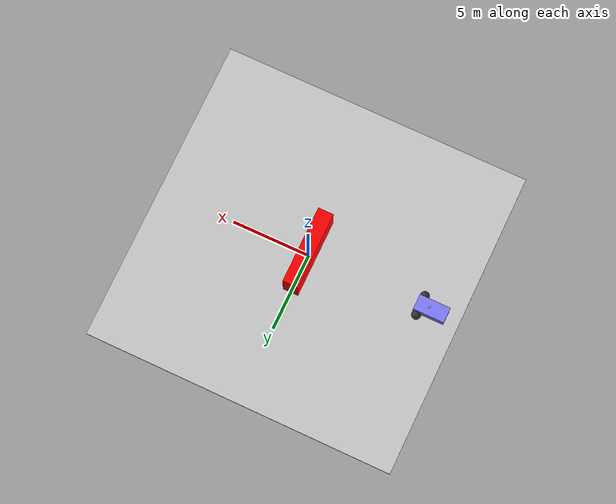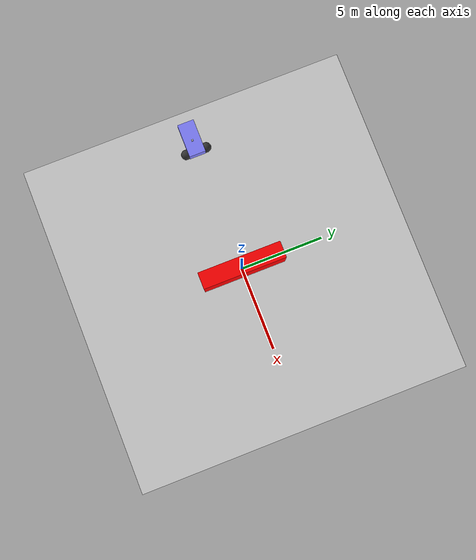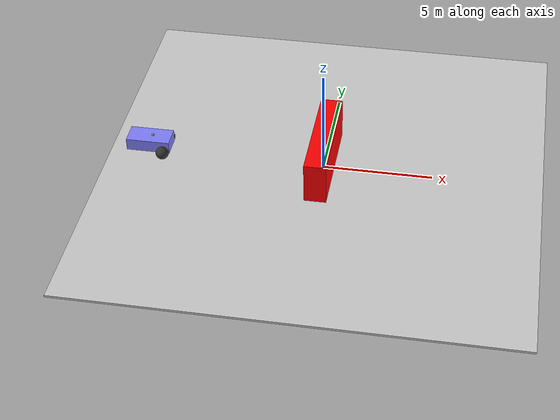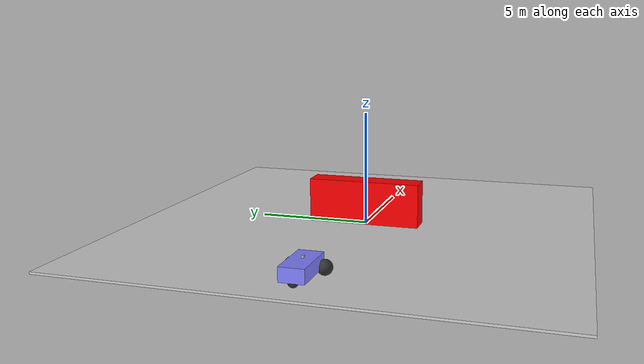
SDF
<?xml version="1.0" ?>
<!--
  You can echo lidar messages using:
    ign topic -e -t /lidar
-->
<sdf version="1.6">
  <world name="arm02_world">
    <playing>true</playing>
    <physics name="1ms" type="ignored">
      <max_step_size>0.001</max_step_size>
      <real_time_factor>1.0</real_time_factor>
    </physics>
    <plugin
      filename="libignition-gazebo-physics-system.so"
      name="ignition::gazebo::systems::Physics">
    </plugin>
    <plugin
      filename="libignition-gazebo-sensors-system.so"
      name="ignition::gazebo::systems::Sensors">
      <render_engine>ogre2</render_engine>
    </plugin>
    <plugin
      filename="libignition-gazebo-scene-broadcaster-system.so"
      name="ignition::gazebo::systems::SceneBroadcaster">
    </plugin>

    <light type="directional" name="sun">
      <cast_shadows>true</cast_shadows>
      <pose>0 0 10 0 0 0</pose>
      <diffuse>0.8 0.8 0.8 1</diffuse>
      <specular>0.2 0.2 0.2 1</specular>
      <attenuation>
        <range>1000</range>
        <constant>0.9</constant>
        <linear>0.01</linear>
        <quadratic>0.001</quadratic>
      </attenuation>
      <direction>-0.5 0.1 -0.9</direction>
    </light>

    <model name="ground_plane">
      <static>true</static>
      <link name="link">
        <collision name="collision">
          <geometry>
            <box>
              <size>20 20 0.1</size>
            </box>
          </geometry>
        </collision>
        <visual name="visual">
          <geometry>
            <box>
              <size>20 20 0.1</size>
            </box>
          </geometry>
          <material>
            <ambient>0.8 0.8 0.8 1</ambient>
            <diffuse>0.8 0.8 0.8 1</diffuse>
            <specular>0.8 0.8 0.8 1</specular>
          </material>
        </visual>
      </link>
    </model>

    <model name="box">
      <static>true</static>
      <pose>0 0 1 0 0 0</pose>
      <link name="box_link">
        <inertial>
          <inertia>
            <ixx>1</ixx>
            <ixy>0</ixy>
            <ixz>0</ixz>
            <iyy>1</iyy>
            <iyz>0</iyz>
            <izz>1</izz>
          </inertia>
          <mass>1.0</mass>
        </inertial>
        <collision name="box_collision">
          <geometry>
            <box>
              <size>1 5 2</size>
            </box>
          </geometry>
        </collision>

        <visual name="box_visual">
          <geometry>
            <box>
              <size>1 5 2</size>
            </box>
          </geometry>
          <material>
            <ambient>1 0 0 1</ambient>
            <diffuse>1 0 0 1</diffuse>
            <specular>1 0 0 1</specular>
          </material>
        </visual>
      </link>
    </model>

    <model name='vehicle_blue'>
      <pose>-8 0 0.425 0 0 0</pose>
      <link name='chassis'>
        <pose>-0.151427 -0 0.175 0 -0 0</pose>
        <inertial>
          <mass>1.14395</mass>
          <inertia>
            <ixx>0.126164</ixx>
            <ixy>0</ixy>
            <ixz>0</ixz>
            <iyy>0.416519</iyy>
            <iyz>0</iyz>
            <izz>0.481014</izz>
          </inertia>
        </inertial>
        <visual name='visual'>
          <geometry>
            <box>
              <size>2.01142 1 0.568726</size>
            </box>
          </geometry>
          <material>
            <ambient>0.5 0.5 1.0 1</ambient>
            <diffuse>0.5 0.5 1.0 1</diffuse>
            <specular>0.0 0.0 1.0 1</specular>
          </material>
        </visual>
        <collision name='collision'>
          <geometry>
            <box>
              <size>2.01142 1 0.568726</size>
            </box>
          </geometry>
        </collision>
      </link>

      <link name="lidar_link">
        <pose>0 0 0.5 0 0 0</pose>
        <inertial>
          <mass>0.1</mass>
          <inertia>
            <ixx>0.000166667</ixx>
            <iyy>0.000166667</iyy>
            <izz>0.000166667</izz>
          </inertia>
        </inertial>
        <collision name="collision">
          <geometry>
            <box>
              <size>0.1 0.1 0.1</size>
            </box>
          </geometry>
        </collision>
        <visual name="visual">
          <geometry>
            <box>
              <size>0.1 0.1 0.1</size>
            </box>
          </geometry>
        </visual>
        <sensor name='gpu_lidar' type='gpu_lidar'>
        <pose>0 0 0 0 0 0</pose>
          <topic>lidar</topic>
          <update_rate>10</update_rate>
          <lidar>
            <scan>
              <horizontal>
                <samples>360</samples>
                <resolution>1</resolution>
                <min_angle>-1.396263</min_angle>
                <max_angle>1.396263</max_angle>
              </horizontal>
              <vertical>
                <samples>1</samples>
                <resolution>1</resolution>
                <min_angle>0.0</min_angle>
                <max_angle>0.0</max_angle>
              </vertical>
            </scan>
            <range>
              <min>0.08</min>
              <max>10.0</max>
              <resolution>0.01</resolution>
            </range>
          </lidar>
          <alwaysOn>1</alwaysOn>
          <visualize>true</visualize>
        </sensor>
      </link>

      <link name='left_wheel'>
        <pose>0.554283 0.625029 -0.025 -1.5707 0 0</pose>
        <inertial>
          <mass>2</mass>
          <inertia>
            <ixx>0.145833</ixx>
            <ixy>0</ixy>
            <ixz>0</ixz>
            <iyy>0.145833</iyy>
            <iyz>0</iyz>
            <izz>0.125</izz>
          </inertia>
        </inertial>
        <visual name='visual'>
          <geometry>
            <sphere>
              <radius>0.3</radius>
            </sphere>
          </geometry>
          <material>
            <ambient>0.2 0.2 0.2 1</ambient>
            <diffuse>0.2 0.2 0.2 1</diffuse>
            <specular>0.2 0.2 0.2 1</specular>
          </material>
        </visual>
        <collision name='collision'>
          <geometry>
            <sphere>
              <radius>0.3</radius>
            </sphere>
          </geometry>
        </collision>
      </link>

      <link name='right_wheel'>
        <pose>0.554282 -0.625029 -0.025 -1.5707 0 0</pose>
        <inertial>
          <mass>2</mass>
          <inertia>
            <ixx>0.145833</ixx>
            <ixy>0</ixy>
            <ixz>0</ixz>
            <iyy>0.145833</iyy>
            <iyz>0</iyz>
            <izz>0.125</izz>
          </inertia>
        </inertial>
        <visual name='visual'>
          <geometry>
            <sphere>
              <radius>0.3</radius>
            </sphere>
          </geometry>
          <material>
            <ambient>0.2 0.2 0.2 1</ambient>
            <diffuse>0.2 0.2 0.2 1</diffuse>
            <specular>0.2 0.2 0.2 1</specular>
          </material>
        </visual>
        <collision name='collision'>
          <geometry>
            <sphere>
              <radius>0.3</radius>
            </sphere>
          </geometry>
        </collision>
      </link>

      <link name='caster'>
        <pose>-0.957138 -0 -0.125 0 -0 0</pose>
        <inertial>
          <mass>1</mass>
          <inertia>
            <ixx>0.1</ixx>
            <ixy>0</ixy>
            <ixz>0</ixz>
            <iyy>0.1</iyy>
            <iyz>0</iyz>
            <izz>0.1</izz>
          </inertia>
        </inertial>
        <visual name='visual'>
          <geometry>
            <sphere>
              <radius>0.2</radius>
            </sphere>
          </geometry>
          <material>
            <ambient>0.2 0.2 0.2 1</ambient>
            <diffuse>0.2 0.2 0.2 1</diffuse>
            <specular>0.2 0.2 0.2 1</specular>
          </material>
        </visual>
        <collision name='collision'>
          <geometry>
            <sphere>
              <radius>0.2</radius>
            </sphere>
          </geometry>
        </collision>
      </link>

      <joint name='lidar_sensor_joint' type='fixed'>
        <parent>chassis</parent>
        <child>lidar_link</child>
      </joint>

      <joint name='left_wheel_joint' type='revolute'>
        <parent>chassis</parent>
        <child>left_wheel</child>
        <axis>
          <xyz>0 0 1</xyz>
          <limit>
            <lower>-1.79769e+308</lower>
            <upper>1.79769e+308</upper>
          </limit>
        </axis>
      </joint>

      <joint name='right_wheel_joint' type='revolute'>
        <parent>chassis</parent>
        <child>right_wheel</child>
        <axis>
          <xyz>0 0 1</xyz>
          <limit>
            <lower>-1.79769e+308</lower>
            <upper>1.79769e+308</upper>
          </limit>
        </axis>
      </joint>

      <joint name='caster_wheel' type='ball'>
        <parent>chassis</parent>
        <child>caster</child>
      </joint>

      <plugin
        filename="libignition-gazebo-diff-drive-system.so"
        name="ignition::gazebo::systems::DiffDrive">
        <alwaysOn>true</alwaysOn>
        <left_joint>left_wheel_joint</left_joint>
        <right_joint>right_wheel_joint</right_joint>
        <wheel_separation>1.25</wheel_separation>
        <wheel_radius>0.3</wheel_radius>
        <odom_publish_frequency>1</odom_publish_frequency>
      </plugin>
    </model>

  </world>
</sdf>
